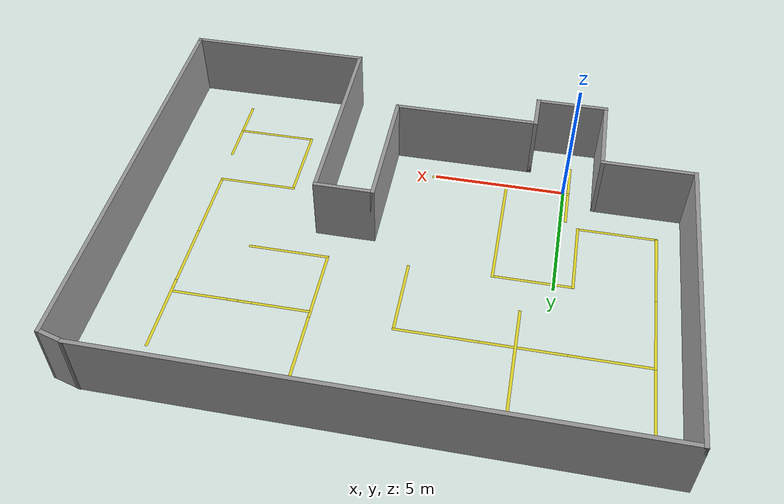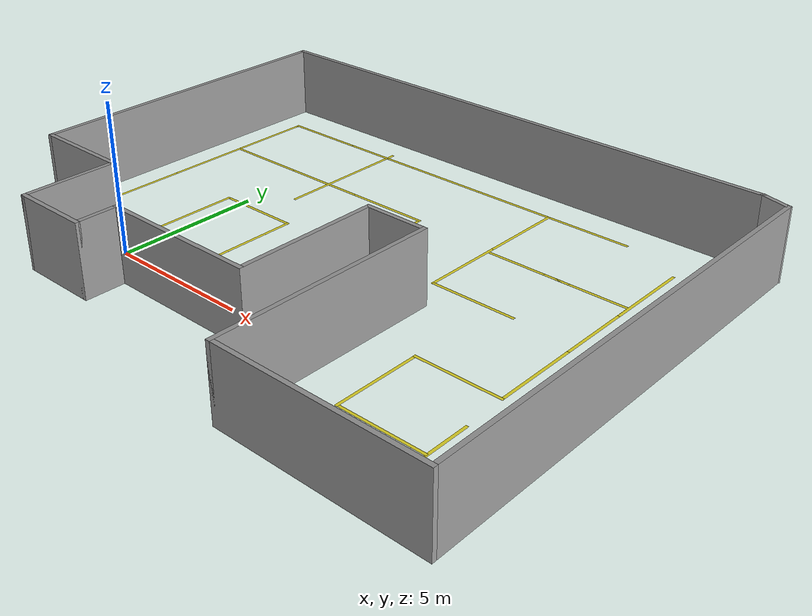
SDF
<sdf version="1.6">
 <world name="default">
  <light name="sun" type="directional">
   <pose>0 0 10 0 -0 0</pose>
   <diffuse>0.8 0.8 0.8 1</diffuse>
   <specular>0.1 0.1 0.1 1</specular>
   <attenuation>
    <range>1000</range>
    <constant>0.9</constant>
    <linear>0.01</linear>
    <quadratic>0.001</quadratic>
   </attenuation>
   <direction>-0.5 0.5 -1</direction>
  </light>
  <gravity>0 0 -9.8</gravity>
  <magnetic_field>6e-06 2.3e-05 -4.2e-05</magnetic_field>
  <atmosphere type="adiabatic"/>
  <physics name="default_physics" default="0" type="ode">
   <max_step_size>0.001</max_step_size>
   <real_time_factor>1</real_time_factor>
   <real_time_update_rate>1000</real_time_update_rate>
  </physics>
  <scene><ambient>0.4 0.4 0.4 1</ambient><background>0.7 0.7 0.7 1</background><shadows>1</shadows></scene>
  <spherical_coordinates>
   <surface_model>EARTH_WGS84</surface_model>
   <latitude_deg>0</latitude_deg>
   <longitude_deg>0</longitude_deg>
   <elevation>0</elevation>
   <heading_deg>0</heading_deg>
  </spherical_coordinates>
  <model name="yellow line_5">
   <static>1</static>
   <link name="link_ground">
    <collision name="collision">
     <geometry><plane><normal>0 0 1</normal><size>0.1 4.8</size></plane></geometry>
     <surface><friction><ode><mu>100</mu><mu2>50</mu2></ode></friction></surface>
    </collision>
    <visual name="visual_ground">
     <cast_shadows>0</cast_shadows>
     <geometry><plane><normal>0 0 1</normal><size>0.1 4.8</size></plane></geometry>
     <material>
      <script><uri>file://media/materials/scripts/gazebo.material</uri><name>Gazebo/Yellow</name></script>
     </material>
    </visual>
   </link>
   <pose>2.19978 2.39516 0 0 -0 0</pose>
  </model>
  <model name="yellow line_6">
   <static>1</static>
   <link name="link_ground">
    <collision name="collision">
     <geometry><plane><normal>0 0 1</normal><size>0.1 2.5</size></plane></geometry>
     <surface><friction><ode><mu>100</mu><mu2>50</mu2></ode></friction></surface>
    </collision>
    <visual name="visual_ground">
     <cast_shadows>0</cast_shadows>
     <geometry><plane><normal>0 0 1</normal><size>0.1 2.5</size></plane></geometry>
     <material>
      <script><uri>file://media/materials/scripts/gazebo.material</uri><name>Gazebo/Yellow</name></script>
     </material>
    </visual>
   </link>
   <pose>1 0 0 0 -0 1.57</pose>
  </model>
  <model name="yellow line">
   <pose>3.64086 -0.0022 -2e-06 4e-06 -0 1.57253</pose>
   <link name="link_ground">
    <collision name="collision">
     <geometry><box><size>0.1 3 1e-05</size></box></geometry>
     <surface><friction><ode><mu>100</mu><mu2>50</mu2></ode></friction></surface>
    </collision>
    <visual name="visual_ground">
     <cast_shadows>0</cast_shadows>
     <geometry><box><size>0.1 3 1e-05</size></box></geometry>
     <material>
      <script><uri>file://media/materials/scripts/gazebo.material</uri><name>Gazebo/Yellow</name></script>
     </material>
    </visual>
    <inertial>
     <inertia><ixx>1</ixx><ixy>0</ixy><ixz>0</ixz><iyy>1</iyy><iyz>0</iyz><izz>1</izz></inertia>
     <mass>1</mass>
    </inertial>
   </link>
  </model>
  <model name="yellow line_clone">
   <pose>0.751702 4.74225 -5e-06 -7e-06 -1e-06 1.57253</pose>
   <link name="link_ground">
    <collision name="collision">
     <geometry><box><size>0.1 3 1e-05</size></box></geometry>
     <surface><friction><ode><mu>100</mu><mu2>50</mu2></ode></friction></surface>
    </collision>
    <visual name="visual_ground">
     <cast_shadows>0</cast_shadows>
     <geometry><box><size>0.1 3 1e-05</size></box></geometry>
     <material>
      <script><uri>file://media/materials/scripts/gazebo.material</uri><name>Gazebo/Yellow</name></script>
     </material>
    </visual>
    <inertial>
     <inertia><ixx>1</ixx><ixy>0</ixy><ixz>0</ixz><iyy>1</iyy><iyz>0</iyz><izz>1</izz></inertia>
     <mass>1</mass>
    </inertial>
   </link>
  </model>
  <model name="yellow line_0">
   <pose>-0.684864 3.2835 6e-06 -7e-06 3e-06 0</pose>
   <link name="link_ground">
    <collision name="collision">
     <geometry><box><size>0.1 3 1e-05</size></box></geometry>
     <surface><friction><ode><mu>100</mu><mu2>50</mu2></ode></friction></surface>
    </collision>
    <visual name="visual_ground">
     <cast_shadows>0</cast_shadows>
     <geometry><box><size>0.1 3 1e-05</size></box></geometry>
     <material>
      <script><uri>file://media/materials/scripts/gazebo.material</uri><name>Gazebo/Yellow</name></script>
     </material>
    </visual>
    <inertial>
     <inertia><ixx>1</ixx><ixy>0</ixy><ixz>0</ixz><iyy>1</iyy><iyz>0</iyz><izz>1</izz></inertia>
     <mass>1</mass>
    </inertial>
   </link>
  </model>
  <model name="yellow line_clone_clone">
   <pose>-2.14412 1.82781 -1.8e-05 -9e-06 -0 1.57253</pose>
   <link name="link_ground">
    <collision name="collision">
     <geometry><box><size>0.1 3 1e-05</size></box></geometry>
     <surface><friction><ode><mu>100</mu><mu2>50</mu2></ode></friction></surface>
    </collision>
    <visual name="visual_ground">
     <cast_shadows>0</cast_shadows>
     <geometry><box><size>0.1 3 1e-05</size></box></geometry>
     <material>
      <script><uri>file://media/materials/scripts/gazebo.material</uri><name>Gazebo/Yellow</name></script>
     </material>
    </visual>
    <inertial>
     <inertia><ixx>1</ixx><ixy>0</ixy><ixz>0</ixz><iyy>1</iyy><iyz>0</iyz><izz>1</izz></inertia>
     <mass>1</mass>
    </inertial>
   </link>
  </model>
  <model name="yellow line_1">
   <pose>-3.59658 3.31193 -1.4e-05 -6e-06 -1e-06 0</pose>
   <link name="link_ground">
    <collision name="collision">
     <geometry><box><size>0.1 3 1e-05</size></box></geometry>
     <surface><friction><ode><mu>100</mu><mu2>50</mu2></ode></friction></surface>
    </collision>
    <visual name="visual_ground">
     <cast_shadows>0</cast_shadows>
     <geometry><box><size>0.1 3 1e-05</size></box></geometry>
     <material>
      <script><uri>file://media/materials/scripts/gazebo.material</uri><name>Gazebo/Yellow</name></script>
     </material>
    </visual>
    <inertial>
     <inertia><ixx>1</ixx><ixy>0</ixy><ixz>0</ixz><iyy>1</iyy><iyz>0</iyz><izz>1</izz></inertia>
     <mass>1</mass>
    </inertial>
   </link>
  </model>
  <model name="yellow line_2">
   <pose>-3.59619 6.29229 1e-06 2.2e-05 -9e-05 0</pose>
   <link name="link_ground">
    <collision name="collision">
     <geometry><box><size>0.1 3 1e-05</size></box></geometry>
     <surface><friction><ode><mu>100</mu><mu2>50</mu2></ode></friction></surface>
    </collision>
    <visual name="visual_ground">
     <cast_shadows>0</cast_shadows>
     <geometry><box><size>0.1 3 1e-05</size></box></geometry>
     <material>
      <script><uri>file://media/materials/scripts/gazebo.material</uri><name>Gazebo/Yellow</name></script>
     </material>
    </visual>
    <inertial>
     <inertia><ixx>1</ixx><ixy>0</ixy><ixz>0</ixz><iyy>1</iyy><iyz>0</iyz><izz>1</izz></inertia>
     <mass>1</mass>
    </inertial>
   </link>
  </model>
  <model name="yellow line_clone_clone_0">
   <pose>-2.14961 7.75344 -1.8e-05 2e-06 -0 1.57253</pose>
   <link name="link_ground">
    <collision name="collision">
     <geometry><box><size>0.1 3 1e-05</size></box></geometry>
     <surface><friction><ode><mu>100</mu><mu2>50</mu2></ode></friction></surface>
    </collision>
    <visual name="visual_ground">
     <cast_shadows>0</cast_shadows>
     <geometry><box><size>0.1 3 1e-05</size></box></geometry>
     <material>
      <script><uri>file://media/materials/scripts/gazebo.material</uri><name>Gazebo/Yellow</name></script>
     </material>
    </visual>
    <inertial>
     <inertia><ixx>1</ixx><ixy>0</ixy><ixz>0</ixz><iyy>1</iyy><iyz>0</iyz><izz>1</izz></inertia>
     <mass>1</mass>
    </inertial>
   </link>
  </model>
  <model name="yellow line_2_clone">
   <pose>-3.59718 9.25688 2.1e-05 -3e-06 -0.000209 0</pose>
   <link name="link_ground">
    <collision name="collision">
     <geometry><box><size>0.1 3 1e-05</size></box></geometry>
     <surface><friction><ode><mu>100</mu><mu2>50</mu2></ode></friction></surface>
    </collision>
    <visual name="visual_ground">
     <cast_shadows>0</cast_shadows>
     <geometry><box><size>0.1 3 1e-05</size></box></geometry>
     <material>
      <script><uri>file://media/materials/scripts/gazebo.material</uri><name>Gazebo/Yellow</name></script>
     </material>
    </visual>
    <inertial>
     <inertia><ixx>1</ixx><ixy>0</ixy><ixz>0</ixz><iyy>1</iyy><iyz>0</iyz><izz>1</izz></inertia>
     <mass>1</mass>
    </inertial>
   </link>
  </model>
  <model name="yellow line_clone_clone_1">
   <pose>0.810121 7.75828 -1.8e-05 4e-06 -0 1.57253</pose>
   <link name="link_ground">
    <collision name="collision">
     <geometry><box><size>0.1 3 1e-05</size></box></geometry>
     <surface><friction><ode><mu>100</mu><mu2>50</mu2></ode></friction></surface>
    </collision>
    <visual name="visual_ground">
     <cast_shadows>0</cast_shadows>
     <geometry><box><size>0.1 3 1e-05</size></box></geometry>
     <material>
      <script><uri>file://media/materials/scripts/gazebo.material</uri><name>Gazebo/Yellow</name></script>
     </material>
    </visual>
    <inertial>
     <inertia><ixx>1</ixx><ixy>0</ixy><ixz>0</ixz><iyy>1</iyy><iyz>0</iyz><izz>1</izz></inertia>
     <mass>1</mass>
    </inertial>
   </link>
  </model>
  <model name="yellow line_clone_clone_2">
   <pose>3.79999 7.76362 -1.1e-05 -1.2e-05 1e-06 1.57253</pose>
   <link name="link_ground">
    <collision name="collision">
     <geometry><box><size>0.1 3 1e-05</size></box></geometry>
     <surface><friction><ode><mu>100</mu><mu2>50</mu2></ode></friction></surface>
    </collision>
    <visual name="visual_ground">
     <cast_shadows>0</cast_shadows>
     <geometry><box><size>0.1 3 1e-05</size></box></geometry>
     <material>
      <script><uri>file://media/materials/scripts/gazebo.material</uri><name>Gazebo/Yellow</name></script>
     </material>
    </visual>
    <inertial>
     <inertia><ixx>1</ixx><ixy>0</ixy><ixz>0</ixz><iyy>1</iyy><iyz>0</iyz><izz>1</izz></inertia>
     <mass>1</mass>
    </inertial>
   </link>
  </model>
  <model name="yellow line_3">
   <pose>5.25144 6.31254 -4e-06 -6e-06 -2e-06 0</pose>
   <link name="link_ground">
    <collision name="collision">
     <geometry><box><size>0.1 3 1e-05</size></box></geometry>
     <surface><friction><ode><mu>100</mu><mu2>50</mu2></ode></friction></surface>
    </collision>
    <visual name="visual_ground">
     <cast_shadows>0</cast_shadows>
     <geometry><box><size>0.1 3 1e-05</size></box></geometry>
     <material>
      <script><uri>file://media/materials/scripts/gazebo.material</uri><name>Gazebo/Yellow</name></script>
     </material>
    </visual>
    <inertial>
     <inertia><ixx>1</ixx><ixy>0</ixy><ixz>0</ixz><iyy>1</iyy><iyz>0</iyz><izz>1</izz></inertia>
     <mass>1</mass>
    </inertial>
   </link>
  </model>
  <model name="yellow line_4">
   <pose>1.06082 8.61861 1e-06 -5e-06 1e-06 0</pose>
   <link name="link_ground">
    <collision name="collision">
     <geometry><box><size>0.1 4.95835 1e-05</size></box></geometry>
     <surface><friction><ode><mu>100</mu><mu2>50</mu2></ode></friction></surface>
    </collision>
    <visual name="visual_ground">
     <cast_shadows>0</cast_shadows>
     <geometry><box><size>0.1 4.95835 1e-05</size></box></geometry>
     <material>
      <script><uri>file://media/materials/scripts/gazebo.material</uri><name>Gazebo/Yellow</name></script>
     </material>
    </visual>
    <inertial>
     <inertia><ixx>1</ixx><ixy>0</ixy><ixz>0</ixz><iyy>1</iyy><iyz>0</iyz><izz>1</izz></inertia>
     <mass>1</mass>
    </inertial>
   </link>
  </model>
  <model name="yellow line_clone_clone_0_clone">
   <pose>-2.14731 10.7557 -1e-06 2.7e-05 1e-06 1.57253</pose>
   <link name="link_ground">
    <collision name="collision">
     <geometry><box><size>0.1 3 1e-05</size></box></geometry>
     <surface><friction><ode><mu>100</mu><mu2>50</mu2></ode></friction></surface>
    </collision>
    <visual name="visual_ground">
     <cast_shadows>0</cast_shadows>
     <geometry><box><size>0.1 3 1e-05</size></box></geometry>
     <material>
      <script><uri>file://media/materials/scripts/gazebo.material</uri><name>Gazebo/Yellow</name></script>
     </material>
    </visual>
    <inertial>
     <inertia><ixx>1</ixx><ixy>0</ixy><ixz>0</ixz><iyy>1</iyy><iyz>0</iyz><izz>1</izz></inertia>
     <mass>1</mass>
    </inertial>
   </link>
  </model>
  <model name="yellow line_clone_clone_0_clone_clone">
   <pose>0.819861 10.7638 -8e-06 4e-06 -0 1.57253</pose>
   <link name="link_ground">
    <collision name="collision">
     <geometry><box><size>0.1 3 1e-05</size></box></geometry>
     <surface><friction><ode><mu>100</mu><mu2>50</mu2></ode></friction></surface>
    </collision>
    <visual name="visual_ground">
     <cast_shadows>0</cast_shadows>
     <geometry><box><size>0.1 3 1e-05</size></box></geometry>
     <material>
      <script><uri>file://media/materials/scripts/gazebo.material</uri><name>Gazebo/Yellow</name></script>
     </material>
    </visual>
    <inertial>
     <inertia><ixx>1</ixx><ixy>0</ixy><ixz>0</ixz><iyy>1</iyy><iyz>0</iyz><izz>1</izz></inertia>
     <mass>1</mass>
    </inertial>
   </link>
  </model>
  <model name="yellow line_clone_clone_0_clone_clone_0">
   <pose>3.81147 10.7719 -1.2e-05 -5e-06 1e-06 1.57253</pose>
   <link name="link_ground">
    <collision name="collision">
     <geometry><box><size>0.1 3 1e-05</size></box></geometry>
     <surface><friction><ode><mu>100</mu><mu2>50</mu2></ode></friction></surface>
    </collision>
    <visual name="visual_ground">
     <cast_shadows>0</cast_shadows>
     <geometry><box><size>0.1 3 1e-05</size></box></geometry>
     <material>
      <script><uri>file://media/materials/scripts/gazebo.material</uri><name>Gazebo/Yellow</name></script>
     </material>
    </visual>
    <inertial>
     <inertia><ixx>1</ixx><ixy>0</ixy><ixz>0</ixz><iyy>1</iyy><iyz>0</iyz><izz>1</izz></inertia>
     <mass>1</mass>
    </inertial>
   </link>
  </model>
  <model name="yellow line_clone_clone_0_clone_clone_1">
   <pose>6.7904 10.7785 -1.8e-05 9e-06 -0 1.57253</pose>
   <link name="link_ground">
    <collision name="collision">
     <geometry><box><size>0.1 3 1e-05</size></box></geometry>
     <surface><friction><ode><mu>100</mu><mu2>50</mu2></ode></friction></surface>
    </collision>
    <visual name="visual_ground">
     <cast_shadows>0</cast_shadows>
     <geometry><box><size>0.1 3 1e-05</size></box></geometry>
     <material>
      <script><uri>file://media/materials/scripts/gazebo.material</uri><name>Gazebo/Yellow</name></script>
     </material>
    </visual>
    <inertial>
     <inertia><ixx>1</ixx><ixy>0</ixy><ixz>0</ixz><iyy>1</iyy><iyz>0</iyz><izz>1</izz></inertia>
     <mass>1</mass>
    </inertial>
   </link>
  </model>
  <model name="yellow line_clone_clone_0_clone_clone_2">
   <pose>9.76563 10.7866 -2e-06 4e-06 -0 1.57253</pose>
   <link name="link_ground">
    <collision name="collision">
     <geometry><box><size>0.1 3 1e-05</size></box></geometry>
     <surface><friction><ode><mu>100</mu><mu2>50</mu2></ode></friction></surface>
    </collision>
    <visual name="visual_ground">
     <cast_shadows>0</cast_shadows>
     <geometry><box><size>0.1 3 1e-05</size></box></geometry>
     <material>
      <script><uri>file://media/materials/scripts/gazebo.material</uri><name>Gazebo/Yellow</name></script>
     </material>
    </visual>
    <inertial>
     <inertia><ixx>1</ixx><ixy>0</ixy><ixz>0</ixz><iyy>1</iyy><iyz>0</iyz><izz>1</izz></inertia>
     <mass>1</mass>
    </inertial>
   </link>
  </model>
  <model name="yellow line_7">
   <pose>8.23183 9.31132 5e-06 9e-06 -1e-06 0</pose>
   <link name="link_ground">
    <collision name="collision">
     <geometry><box><size>0.1 3 1e-05</size></box></geometry>
     <surface><friction><ode><mu>100</mu><mu2>50</mu2></ode></friction></surface>
    </collision>
    <visual name="visual_ground">
     <cast_shadows>0</cast_shadows>
     <geometry><box><size>0.1 3 1e-05</size></box></geometry>
     <material>
      <script><uri>file://media/materials/scripts/gazebo.material</uri><name>Gazebo/Yellow</name></script>
     </material>
    </visual>
    <inertial>
     <inertia><ixx>1</ixx><ixy>0</ixy><ixz>0</ixz><iyy>1</iyy><iyz>0</iyz><izz>1</izz></inertia>
     <mass>1</mass>
    </inertial>
   </link>
  </model>
  <model name="yellow line_8">
   <pose>8.2307 6.41867 -7e-06 -1e-06 1e-06 0</pose>
   <link name="link_ground">
    <collision name="collision">
     <geometry><box><size>0.1 3 1e-05</size></box></geometry>
     <surface><friction><ode><mu>100</mu><mu2>50</mu2></ode></friction></surface>
    </collision>
    <visual name="visual_ground">
     <cast_shadows>0</cast_shadows>
     <geometry><box><size>0.1 3 1e-05</size></box></geometry>
     <material>
      <script><uri>file://media/materials/scripts/gazebo.material</uri><name>Gazebo/Yellow</name></script>
     </material>
    </visual>
    <inertial>
     <inertia><ixx>1</ixx><ixy>0</ixy><ixz>0</ixz><iyy>1</iyy><iyz>0</iyz><izz>1</izz></inertia>
     <mass>1</mass>
    </inertial>
   </link>
  </model>
  <model name="yellow line_clone_clone_0_clone_clone_2_clone">
   <pose>9.72336 4.97585 -5e-06 1.4e-05 1e-06 1.57253</pose>
   <link name="link_ground">
    <collision name="collision">
     <geometry><box><size>0.1 3 1e-05</size></box></geometry>
     <surface><friction><ode><mu>100</mu><mu2>50</mu2></ode></friction></surface>
    </collision>
    <visual name="visual_ground">
     <cast_shadows>0</cast_shadows>
     <geometry><box><size>0.1 3 1e-05</size></box></geometry>
     <material>
      <script><uri>file://media/materials/scripts/gazebo.material</uri><name>Gazebo/Yellow</name></script>
     </material>
    </visual>
    <inertial>
     <inertia><ixx>1</ixx><ixy>0</ixy><ixz>0</ixz><iyy>1</iyy><iyz>0</iyz><izz>1</izz></inertia>
     <mass>1</mass>
    </inertial>
   </link>
  </model>
  <model name="yellow line_clone_clone_0_clone_clone_2_clone_0">
   <pose>9.75262 7.5806 -9e-06 -0 -1.1e-05 1.57253</pose>
   <link name="link_ground">
    <collision name="collision">
     <geometry><box><size>0.1 3 1e-05</size></box></geometry>
     <surface><friction><ode><mu>100</mu><mu2>50</mu2></ode></friction></surface>
    </collision>
    <visual name="visual_ground">
     <cast_shadows>0</cast_shadows>
     <geometry><box><size>0.1 3 1e-05</size></box></geometry>
     <material>
      <script><uri>file://media/materials/scripts/gazebo.material</uri><name>Gazebo/Yellow</name></script>
     </material>
    </visual>
    <inertial>
     <inertia><ixx>1</ixx><ixy>0</ixy><ixz>0</ixz><iyy>1</iyy><iyz>0</iyz><izz>1</izz></inertia>
     <mass>1</mass>
    </inertial>
   </link>
  </model>
  <model name="yellow line_clone_clone_0_clone_clone_2_clone_1">
   <pose>11.8582 7.58394 -1.8e-05 9e-06 1e-06 1.57253</pose>
   <link name="link_ground">
    <collision name="collision">
     <geometry><box><size>0.1 3 1e-05</size></box></geometry>
     <surface><friction><ode><mu>100</mu><mu2>50</mu2></ode></friction></surface>
    </collision>
    <visual name="visual_ground">
     <cast_shadows>0</cast_shadows>
     <geometry><box><size>0.1 3 1e-05</size></box></geometry>
     <material>
      <script><uri>file://media/materials/scripts/gazebo.material</uri><name>Gazebo/Yellow</name></script>
     </material>
    </visual>
    <inertial>
     <inertia><ixx>1</ixx><ixy>0</ixy><ixz>0</ixz><iyy>1</iyy><iyz>0</iyz><izz>1</izz></inertia>
     <mass>1</mass>
    </inertial>
   </link>
  </model>
  <model name="yellow line_9">
   <pose>13.3118 6.10237 -1.6e-05 -8e-06 0 0</pose>
   <link name="link_ground">
    <collision name="collision">
     <geometry><box><size>0.1 3 1e-05</size></box></geometry>
     <surface><friction><ode><mu>100</mu><mu2>50</mu2></ode></friction></surface>
    </collision>
    <visual name="visual_ground">
     <cast_shadows>0</cast_shadows>
     <geometry><box><size>0.1 3 1e-05</size></box></geometry>
     <material>
      <script><uri>file://media/materials/scripts/gazebo.material</uri><name>Gazebo/Yellow</name></script>
     </material>
    </visual>
    <inertial>
     <inertia><ixx>1</ixx><ixy>0</ixy><ixz>0</ixz><iyy>1</iyy><iyz>0</iyz><izz>1</izz></inertia>
     <mass>1</mass>
    </inertial>
   </link>
  </model>
  <model name="yellow line_10">
   <pose>13.3156 8.55615 -2e-06 -4e-06 0 0</pose>
   <link name="link_ground">
    <collision name="collision">
     <geometry><box><size>0.1 3 1e-05</size></box></geometry>
     <surface><friction><ode><mu>100</mu><mu2>50</mu2></ode></friction></surface>
    </collision>
    <visual name="visual_ground">
     <cast_shadows>0</cast_shadows>
     <geometry><box><size>0.1 3 1e-05</size></box></geometry>
     <material>
      <script><uri>file://media/materials/scripts/gazebo.material</uri><name>Gazebo/Yellow</name></script>
     </material>
    </visual>
    <inertial>
     <inertia><ixx>1</ixx><ixy>0</ixy><ixz>0</ixz><iyy>1</iyy><iyz>0</iyz><izz>1</izz></inertia>
     <mass>1</mass>
    </inertial>
   </link>
  </model>
  <model name="yellow line_11">
   <pose>13.3117 3.16747 -3e-05 -3e-06 1e-06 0</pose>
   <link name="link_ground">
    <collision name="collision">
     <geometry><box><size>0.1 3 1e-05</size></box></geometry>
     <surface><friction><ode><mu>100</mu><mu2>50</mu2></ode></friction></surface>
    </collision>
    <visual name="visual_ground">
     <cast_shadows>0</cast_shadows>
     <geometry><box><size>0.1 3 1e-05</size></box></geometry>
     <material>
      <script><uri>file://media/materials/scripts/gazebo.material</uri><name>Gazebo/Yellow</name></script>
     </material>
    </visual>
    <inertial>
     <inertia><ixx>1</ixx><ixy>0</ixy><ixz>0</ixz><iyy>1</iyy><iyz>0</iyz><izz>1</izz></inertia>
     <mass>1</mass>
    </inertial>
   </link>
  </model>
  <model name="yellow line_clone_clone_0_clone_clone_2_clone_clone">
   <pose>11.8558 1.70407 -1.8e-05 -5e-06 0 1.57253</pose>
   <link name="link_ground">
    <collision name="collision">
     <geometry><box><size>0.1 3 1e-05</size></box></geometry>
     <surface><friction><ode><mu>100</mu><mu2>50</mu2></ode></friction></surface>
    </collision>
    <visual name="visual_ground">
     <cast_shadows>0</cast_shadows>
     <geometry><box><size>0.1 3 1e-05</size></box></geometry>
     <material>
      <script><uri>file://media/materials/scripts/gazebo.material</uri><name>Gazebo/Yellow</name></script>
     </material>
    </visual>
    <inertial>
     <inertia><ixx>1</ixx><ixy>0</ixy><ixz>0</ixz><iyy>1</iyy><iyz>0</iyz><izz>1</izz></inertia>
     <mass>1</mass>
    </inertial>
   </link>
  </model>
  <model name="yellow line_12">
   <pose>10.4111 0.197266 -2.4e-05 -2.8e-05 1e-06 -0</pose>
   <link name="link_ground">
    <collision name="collision">
     <geometry><box><size>0.1 3 1e-05</size></box></geometry>
     <surface><friction><ode><mu>100</mu><mu2>50</mu2></ode></friction></surface>
    </collision>
    <visual name="visual_ground">
     <cast_shadows>0</cast_shadows>
     <geometry><box><size>0.1 3 1e-05</size></box></geometry>
     <material>
      <script><uri>file://media/materials/scripts/gazebo.material</uri><name>Gazebo/Yellow</name></script>
     </material>
    </visual>
    <inertial>
     <inertia><ixx>1</ixx><ixy>0</ixy><ixz>0</ixz><iyy>1</iyy><iyz>0</iyz><izz>1</izz></inertia>
     <mass>1</mass>
    </inertial>
   </link>
  </model>
  <model name="yellow line_clone_clone_0_clone_clone_2_clone_clone_clone">
   <pose>11.8744 -1.24777 -2e-06 -5e-06 0 1.57253</pose>
   <link name="link_ground">
    <collision name="collision">
     <geometry><box><size>0.1 3 1e-05</size></box></geometry>
     <surface><friction><ode><mu>100</mu><mu2>50</mu2></ode></friction></surface>
    </collision>
    <visual name="visual_ground">
     <cast_shadows>0</cast_shadows>
     <geometry><box><size>0.1 3 1e-05</size></box></geometry>
     <material>
      <script><uri>file://media/materials/scripts/gazebo.material</uri><name>Gazebo/Yellow</name></script>
     </material>
    </visual>
    <inertial>
     <inertia><ixx>1</ixx><ixy>0</ixy><ixz>0</ixz><iyy>1</iyy><iyz>0</iyz><izz>1</izz></inertia>
     <mass>1</mass>
    </inertial>
   </link>
  </model>
  <model name="yellow line_13">
   <pose>13.3674 -1.23961 -4e-06 -6e-06 0 0</pose>
   <link name="link_ground">
    <collision name="collision">
     <geometry><box><size>0.1 3 1e-05</size></box></geometry>
     <surface><friction><ode><mu>100</mu><mu2>50</mu2></ode></friction></surface>
    </collision>
    <visual name="visual_ground">
     <cast_shadows>0</cast_shadows>
     <geometry><box><size>0.1 3 1e-05</size></box></geometry>
     <material>
      <script><uri>file://media/materials/scripts/gazebo.material</uri><name>Gazebo/Yellow</name></script>
     </material>
    </visual>
    <inertial>
     <inertia><ixx>1</ixx><ixy>0</ixy><ixz>0</ixz><iyy>1</iyy><iyz>0</iyz><izz>1</izz></inertia>
     <mass>1</mass>
    </inertial>
   </link>
  </model>
  <model name="yellow line_14">
   <pose>-0.200066 0.042625 -2e-06 -4e-06 0 0</pose>
   <link name="link_ground">
    <collision name="collision">
     <geometry><box><size>0.1 3 1e-05</size></box></geometry>
     <surface><friction><ode><mu>100</mu><mu2>50</mu2></ode></friction></surface>
    </collision>
    <visual name="visual_ground">
     <cast_shadows>0</cast_shadows>
     <geometry><box><size>0.1 3 1e-05</size></box></geometry>
     <material>
      <script><uri>file://media/materials/scripts/gazebo.material</uri><name>Gazebo/Yellow</name></script>
     </material>
    </visual>
    <inertial>
     <inertia><ixx>1</ixx><ixy>0</ixy><ixz>0</ixz><iyy>1</iyy><iyz>0</iyz><izz>1</izz></inertia>
     <mass>1</mass>
    </inertial>
   </link>
  </model>
  <model name="room">
   <pose>5.60096 4.11911 0 0 -0 0</pose>
   <link name="Wall_19">
    <collision name="Wall_19_Collision">
     <geometry><box><size>3.25 0.15 2.5</size></box></geometry>
     <pose>0 0 1.25 0 -0 0</pose>
    </collision>
    <visual name="Wall_19_Visual">
     <pose>0 0 1.25 0 -0 0</pose>
     <geometry><box><size>3.25 0.15 2.5</size></box></geometry>
     <material>
      <script><uri>file://media/materials/scripts/gazebo.material</uri><name>Gazebo/Grey</name></script>
      <ambient>1 1 1 1</ambient>
     </material>
     <meta><layer>0</layer></meta>
    </visual>
    <pose>-6.78367 -4.98367 0 0 0 -1.5708</pose>
   </link>
   <link name="Wall_20">
    <collision name="Wall_20_Collision">
     <geometry><box><size>2.75 0.15 2.5</size></box></geometry>
     <pose>0 0 1.25 0 -0 0</pose>
    </collision>
    <visual name="Wall_20_Visual">
     <pose>0 0 1.25 0 -0 0</pose>
     <geometry><box><size>2.75 0.15 2.5</size></box></geometry>
     <material>
      <script><uri>file://media/materials/scripts/gazebo.material</uri><name>Gazebo/Grey</name></script>
      <ambient>1 1 1 1</ambient>
     </material>
     <meta><layer>0</layer></meta>
    </visual>
    <pose>-5.48367 -6.53367 0 0 -0 0</pose>
   </link>
   <link name="Wall_21">
    <collision name="Wall_21_Collision">
     <geometry><box><size>1.5 0.15 2.5</size></box></geometry>
     <pose>0 0 1.25 0 -0 0</pose>
    </collision>
    <visual name="Wall_21_Visual">
     <pose>0 0 1.25 0 -0 0</pose>
     <geometry><box><size>1.5 0.15 2.5</size></box></geometry>
     <material>
      <script><uri>file://media/materials/scripts/gazebo.material</uri><name>Gazebo/Grey</name></script>
      <ambient>1 1 1 1</ambient>
     </material>
     <meta><layer>0</layer></meta>
    </visual>
    <pose>-4.18367 -5.85867 0 0 -0 1.5708</pose>
   </link>
   <link name="Wall_22">
    <collision name="Wall_22_Collision">
     <geometry><box><size>5.5 0.15 2.5</size></box></geometry>
     <pose>0 0 1.25 0 -0 0</pose>
    </collision>
    <visual name="Wall_22_Visual">
     <pose>0 0 1.25 0 -0 0</pose>
     <geometry><box><size>5.5 0.15 2.5</size></box></geometry>
     <material>
      <script><uri>file://media/materials/scripts/gazebo.material</uri><name>Gazebo/Grey</name></script>
      <ambient>1 1 1 1</ambient>
     </material>
     <meta><layer>0</layer></meta>
    </visual>
    <pose>-1.50867 -5.18367 0 0 -0 0</pose>
   </link>
   <link name="Wall_23">
    <collision name="Wall_23_Collision">
     <geometry><box><size>5 0.15 2.5</size></box></geometry>
     <pose>0 0 1.25 0 -0 0</pose>
    </collision>
    <visual name="Wall_23_Visual">
     <pose>0 0 1.25 0 -0 0</pose>
     <geometry><box><size>5 0.15 2.5</size></box></geometry>
     <material>
      <script><uri>file://media/materials/scripts/gazebo.material</uri><name>Gazebo/Grey</name></script>
      <ambient>1 1 1 1</ambient>
     </material>
     <meta><layer>0</layer></meta>
    </visual>
    <pose>1.16633 -2.75867 0 0 -0 1.5708</pose>
   </link>
   <link name="Wall_24">
    <collision name="Wall_24_Collision">
     <geometry><box><size>2.25 0.15 2.5</size></box></geometry>
     <pose>0 0 1.25 0 -0 0</pose>
    </collision>
    <visual name="Wall_24_Visual">
     <pose>0 0 1.25 0 -0 0</pose>
     <geometry><box><size>2.25 0.15 2.5</size></box></geometry>
     <material>
      <script><uri>file://media/materials/scripts/gazebo.material</uri><name>Gazebo/Grey</name></script>
      <ambient>1 1 1 1</ambient>
     </material>
     <meta><layer>0</layer></meta>
    </visual>
    <pose>2.21633 -0.333668 0 0 -0 0</pose>
   </link>
   <link name="Wall_25">
    <collision name="Wall_25_Collision">
     <geometry><box><size>7.75 0.15 2.5</size></box></geometry>
     <pose>0 0 1.25 0 -0 0</pose>
    </collision>
    <visual name="Wall_25_Visual">
     <pose>0 0 1.25 0 -0 0</pose>
     <geometry><box><size>7.75 0.15 2.5</size></box></geometry>
     <material>
      <script><uri>file://media/materials/scripts/gazebo.material</uri><name>Gazebo/Grey</name></script>
      <ambient>1 1 1 1</ambient>
     </material>
     <meta><layer>0</layer></meta>
    </visual>
    <pose>3.26633 -4.13367 0 0 0 -1.5708</pose>
   </link>
   <link name="Wall_26">
    <collision name="Wall_26_Collision">
     <geometry><box><size>7 0.15 2.5</size></box></geometry>
     <pose>0 0 1.25 0 -0 0</pose>
    </collision>
    <visual name="Wall_26_Visual">
     <pose>0 0 1.25 0 -0 0</pose>
     <geometry><box><size>7 0.15 2.5</size></box></geometry>
     <material>
      <script><uri>file://media/materials/scripts/gazebo.material</uri><name>Gazebo/Grey</name></script>
      <ambient>1 1 1 1</ambient>
     </material>
     <meta><layer>0</layer></meta>
    </visual>
    <pose>6.69133 -7.93367 0 0 -0 0</pose>
   </link>
   <link name="Wall_27">
    <collision name="Wall_27_Collision">
     <geometry><box><size>15.75 0.15 2.5</size></box></geometry>
     <pose>0 0 1.25 0 -0 0</pose>
    </collision>
    <visual name="Wall_27_Visual">
     <pose>0 0 1.25 0 -0 0</pose>
     <geometry><box><size>15.75 0.15 2.5</size></box></geometry>
     <material>
      <script><uri>file://media/materials/scripts/gazebo.material</uri><name>Gazebo/Grey</name></script>
      <ambient>1 1 1 1</ambient>
     </material>
     <meta><layer>0</layer></meta>
    </visual>
    <pose>10.1163 -0.133668 0 0 -0 1.5708</pose>
   </link>
   <link name="Wall_28">
    <collision name="Wall_28_Collision">
     <geometry><box><size>1.08408 0.15 2.5</size></box></geometry>
     <pose>0 0 1.25 0 -0 0</pose>
    </collision>
    <visual name="Wall_28_Visual">
     <pose>0 0 1.25 0 -0 0</pose>
     <geometry><box><size>1.08408 0.15 2.5</size></box></geometry>
     <material>
      <script><uri>file://media/materials/scripts/gazebo.material</uri><name>Gazebo/Grey</name></script>
      <ambient>1 1 1 1</ambient>
     </material>
     <meta><layer>0</layer></meta>
    </visual>
    <pose>9.66633 7.79133 0 0 -0 2.87065</pose>
   </link>
   <link name="Wall_3">
    <collision name="Wall_3_Collision">
     <geometry><box><size>3.5 0.15 2.5</size></box></geometry>
     <pose>0 0 1.25 0 -0 0</pose>
    </collision>
    <visual name="Wall_3_Visual">
     <pose>0 0 1.25 0 -0 0</pose>
     <geometry><box><size>3.5 0.15 2.5</size></box></geometry>
     <material>
      <script><uri>file://media/materials/scripts/gazebo.material</uri><name>Gazebo/Grey</name></script>
      <ambient>1 1 1 1</ambient>
     </material>
     <meta><layer>0</layer></meta>
    </visual>
    <pose>-8.45867 -3.43367 0 0 -0 3.14159</pose>
   </link>
   <link name="Wall_4">
    <collision name="Wall_4_Collision">
     <geometry><box><size>11.5 0.15 2.5</size></box></geometry>
     <pose>0 0 1.25 0 -0 0</pose>
    </collision>
    <visual name="Wall_4_Visual">
     <pose>0 0 1.25 0 -0 0</pose>
     <geometry><box><size>11.5 0.15 2.5</size></box></geometry>
     <material>
      <script><uri>file://media/materials/scripts/gazebo.material</uri><name>Gazebo/Grey</name></script>
      <ambient>1 1 1 1</ambient>
     </material>
     <meta><layer>0</layer></meta>
    </visual>
    <pose>-10.1337 2.24133 0 0 -0 1.5708</pose>
   </link>
   <link name="Wall_5">
    <collision name="Wall_5_Collision">
     <geometry><box><size>19.5 0.15 2.5</size></box></geometry>
     <pose>0 0 1.25 0 -0 0</pose>
    </collision>
    <visual name="Wall_5_Visual">
     <pose>0 0 1.25 0 -0 0</pose>
     <geometry><box><size>19.5 0.15 2.5</size></box></geometry>
     <material>
      <script><uri>file://media/materials/scripts/gazebo.material</uri><name>Gazebo/Grey</name></script>
      <ambient>1 1 1 1</ambient>
     </material>
     <meta><layer>0</layer></meta>
    </visual>
    <pose>-0.458668 7.91633 0 0 -0 0</pose>
   </link>
   <static>1</static>
  </model>
 </world>
</sdf>
